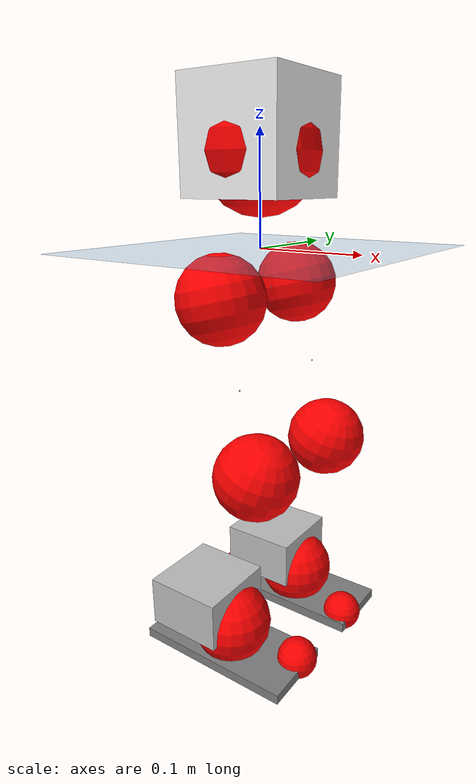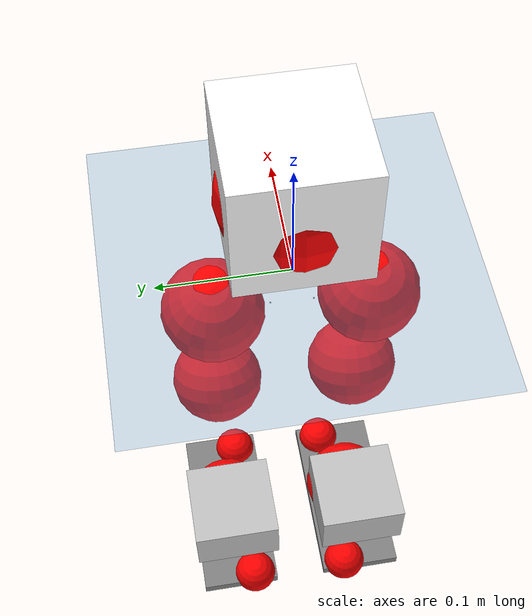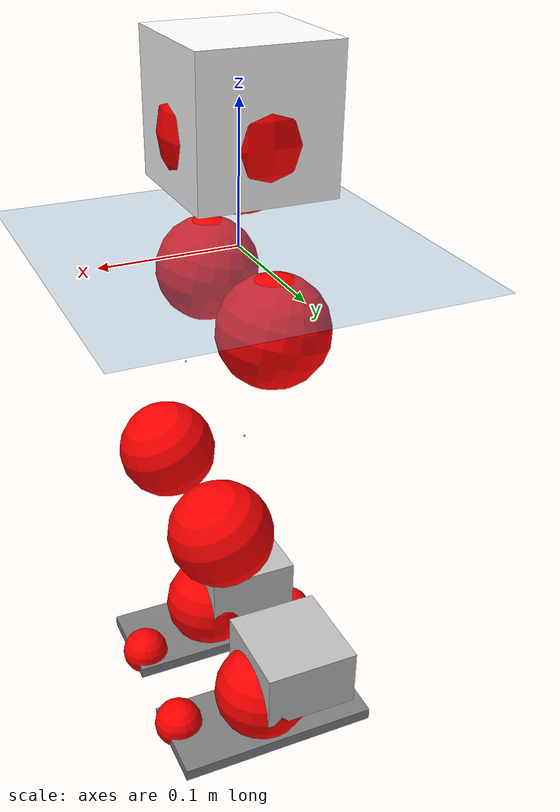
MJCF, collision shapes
<mujoco model="pi_12dof_release_v1">
  <compiler angle="radian" assetdir="assets" balanceinertia="true" inertiafromgeom="false"/>

  <option timestep="0.005" density="1.2" viscosity="2e-05"/>

  <size nkey="1"/>

  <visual>
    <quality shadowsize="8192"/>
    <map shadowclip="0.5"/>
  </visual>

  <default>
    <default class="/">
      <joint armature="0.01" damping="0.01" frictionloss="0.01"/>
      <geom contype="0" conaffinity="0" group="1" solref="-1000 -80"/>
      <site size="0.01 0.005 0.005" group="5"/>
      <general forcelimited="true" biastype="affine" gainprm="20" biasprm="0 -20 -0.5"/>
      <default class="foot">
        <geom size="0.0845 0.036 0.005" type="box" condim="6" group="4" priority="1" friction="0.9 0.2 0.2" solimp="0.015 1 0.005"/>
      </default>
      <default class="reward_collision_sphere">
        <geom group="5" rgba="1 0 0 1"/>
      </default>
    </default>
  </default>

  <asset>
    <texture type="skybox" colorspace="auto" name="//unnamed_texture_0" builtin="gradient" rgb1="0.95 0.95 0.95" rgb2="0.95 0.95 0.95" width="100" height="600"/>
    <texture type="2d" colorspace="auto" name="texplane" builtin="checker" rgb1="0.345 0.575 0.748" rgb2="0.345 0.575 0.748" markrgb="1 1 1" width="512" height="512"/>
    <material name="MatPlane" class="/" texture="texplane" texuniform="true" texrepeat="2 2" specular="0.9"/>
    <mesh name="baselink_1" class="/" file="baselink_1.STL"/>
    <mesh name="r_hip_pitch_link" class="/" file="r_hip_pitch_link.STL"/>
    <mesh name="r_hip_roll_link" class="/" file="r_hip_roll_link.STL"/>
    <mesh name="r_thigh_link" class="/" file="r_thigh_link.STL"/>
    <mesh name="r_calf_link" class="/" file="r_calf_link.STL"/>
    <mesh name="r_ankle_pitch_link" class="/" file="r_ankle_pitch_link.STL"/>
    <mesh name="r_ankle_roll_link" class="/" file="r_ankle_roll_link.STL"/>
    <mesh name="l_hip_pitch_link" class="/" file="l_hip_pitch_link.STL"/>
    <mesh name="l_hip_roll_link" class="/" file="l_hip_roll_link.STL"/>
    <mesh name="l_thigh_link" class="/" file="l_thigh_link.STL"/>
    <mesh name="l_calf_link" class="/" file="l_calf_link.STL"/>
    <mesh name="l_ankle_pitch_link" class="/" file="l_ankle_pitch_link.STL"/>
    <mesh name="l_ankle_roll_link" class="/" file="l_ankle_roll_link.STL"/>
  </asset>

  <worldbody>
    <geom name="floor" class="/" size="100 100 0.125" type="plane" group="0" material="MatPlane"/>
    <light name="toplight_shadow" class="/" pos="0 0 5" dir="0.0990148 0.0990148 -0.990148" type="directional" ambient="0.04 0.04 0.04" diffuse="0.55 0.55 0.55" specular="0.12 0.12 0.12"/>
    <light name="toplight_fill" class="/" pos="0 0 5" dir="0.0990148 0.0990148 -0.990148" type="directional" castshadow="false" ambient="0.04 0.04 0.04" diffuse="0.3 0.3 0.3" specular="0.08 0.08 0.08"/>
    <body name="trunk" pos="2.12199e-05 0.000634626 0.000313169" quat="1 0.000114461 -9.49832e-05 0.000269519">
      <inertial pos="0.00332775 -0.00198547 0.045498" quat="0.695507 0.00583408 0.00678891 0.718463" mass="1.96028" diaginertia="0.0116677 0.00202302 0.00774158"/>
      <joint name="//unnamed_joint_0" type="free"/>
      <geom name="//unnamed_geom_1" class="/" type="mesh" density="0" rgba="1 1 1 1" mesh="baselink_1"/>
      <geom name="//unnamed_geom_2" class="/" size="0.0486933 0.0486933 0.0486933" pos="0 0 0.0908245" type="box" rgba="1 1 1 1"/>
      <geom name="//unnamed_geom_3" class="reward_collision_sphere" size="0.0535626" pos="0 0 0.0794715"/>
      <site name="imu" class="/" pos="-0.0012908 -0.00102048 -0.00104613" size="0.00973865"/>
      <camera name="track" class="/" pos="0 -1.4875 0" quat="0.707107 0.707107 0 0" mode="trackcom"/>
      <camera name="ego_camera" class="/" pos="0.0781904 0 0.204355" quat="-0.5 -0.5 0.5 0.5"/>
      <body name="r_hip_pitch_link" pos="-0.000135937 -0.0165834 -0.0372868" quat="0.992186 1.37938e-06 -0.124764 6.6284e-05">
        <inertial pos="0.000915964 -0.0423145 0.000126403" quat="-0.0165943 0.711203 -0.0242298 0.702373" mass="0.342239" diaginertia="0.000134501 2.26792e-05 0.00015796"/>
        <joint name="r_hip_pitch_joint" class="/" pos="0 0 0" axis="0.00705337 -0.999971 -0.00282836" range="-1.76308 1.23156" armature="0.00977469" damping="0.0179892" frictionloss="0.0102222"/>
        <geom name="//unnamed_geom_4" class="/" type="mesh" density="0" rgba="0.75294 0.75294 0.75294 1" mesh="r_hip_pitch_link"/>
        <geom name="//unnamed_geom_5" class="/" size="0.000486933 0.000486933 0.000486933" type="box" rgba="0.75294 0.75294 0.75294 1"/>
        <body name="r_hip_roll_link" pos="0.00032 -0.0422235 -0.000658237" quat="1 0.000418668 0.000348523 0.000352418">
          <inertial pos="-0.000676438 0.00115528 -0.0692147" quat="0.703902 -0.0769765 -0.0817433 0.701366" mass="0.355387" diaginertia="0.000409512 6.44621e-05 0.000243103"/>
          <joint name="r_hip_roll_joint" class="/" pos="0 0 0" axis="-0.999991 -0.00163533 -0.00382942" range="-0.123382 0.498436" armature="0.00968841" damping="0.00876875" frictionloss="0.00962458"/>
          <geom name="//unnamed_geom_6" class="/" type="mesh" density="0" rgba="0.75294 0.75294 0.75294 1" mesh="r_hip_roll_link"/>
          <geom name="//unnamed_geom_7" class="/" size="0.000486933 0.000486933 0.000486933" type="box" rgba="0.75294 0.75294 0.75294 1"/>
          <geom name="//unnamed_geom_8" class="reward_collision_sphere" size="0.0389546"/>
          <body name="r_thigh_link" pos="-0.000289741 -0.00120436 -0.0780877" quat="1 -0.000198913 -0.00022606 -1.52931e-05">
            <inertial pos="-0.000124366 0.00112784 -0.0540796" quat="0.737968 0.674829 0.00227442 0.00162659" mass="0.10443" diaginertia="0.000155532 2.20018e-05 0.000109933"/>
            <joint name="r_thigh_joint" class="/" pos="0 0 0" axis="-2.71296e-05 0.000309012 -1" range="-0.326733 0.567366" armature="0.00984273" damping="0" frictionloss="0.0103116"/>
            <geom name="//unnamed_geom_9" class="/" type="mesh" density="0" rgba="0.75294 0.75294 0.75294 1" mesh="r_thigh_link"/>
            <geom name="//unnamed_geom_10" class="/" size="0.000486933 0.000486933 0.000486933" type="box" rgba="0.75294 0.75294 0.75294 1"/>
            <body name="r_calf_link" pos="-0.00186574 -0.000917047 -0.0788435" quat="0.947691 -8.33698e-05 0.31919 1.03327e-05">
              <inertial pos="-0.000831492 -0.00165818 -0.0785756" quat="0.999959 -0.00314722 0.000197662 0.0084879" mass="0.756878" diaginertia="0.00435466 0.000796847 0.000326439"/>
              <joint name="r_calf_joint" class="/" pos="0 0 0" axis="-0.00966542 -0.999951 -0.00231702" stiffness="0.000191023" range="-1.63104 0.637448" armature="0.00981992" damping="0.0140106" frictionloss="0.0101434"/>
              <geom name="//unnamed_geom_11" class="/" type="mesh" density="0" rgba="0.75294 0.75294 0.75294 1" mesh="r_calf_link"/>
              <geom name="//unnamed_geom_12" class="/" size="0.000486933 0.000486933 0.000486933" type="box" rgba="0.75294 0.75294 0.75294 1"/>
              <geom name="//unnamed_geom_13" class="reward_collision_sphere" size="0.0389546"/>
              <body name="r_ankle_pitch_link" pos="0.00129507 0.000655782 -0.160119" quat="0.980056 -2.13258e-06 -0.198723 2.2807e-05">
                <inertial pos="0.00412157 0.00348526 0.000771631" quat="-0.000503493 0.706959 -0.00321714 0.707247" mass="0.162414" diaginertia="0.000382608 5.05351e-05 0.000226237"/>
                <joint name="r_ankle_pitch_joint" class="/" pos="0 0 0" axis="-2.5222e-05 -1 -2.01844e-05" range="-1.28636 0.482247" armature="0.00987528" damping="0.0108736" frictionloss="0.0100504"/>
                <geom name="//unnamed_geom_14" class="/" type="mesh" density="0" rgba="0.75294 0.75294 0.75294 1" mesh="r_ankle_pitch_link"/>
                <geom name="//unnamed_geom_15" class="/" size="0.0379807 0.0389546 0.0243466" type="box" rgba="0.75294 0.75294 0.75294 1"/>
                <body name="r_ankle_roll_link" pos="0.0799461 0.00304201 0.000994949" quat="1 6.15225e-05 -8.80953e-05 -5.77046e-06">
                  <inertial pos="-0.0241023 -0.000627589 -0.0163824" quat="0.558723 0.433821 0.431727 0.559679" mass="0.487676" diaginertia="0.00143194 0.000237544 0.000549654"/>
                  <joint name="r_ankle_roll_joint" class="/" pos="0 0 0" axis="-0.99997 -0.00116903 0.00769309" range="-0.120674 0.152256" armature="0.00968818" damping="0.00364246" frictionloss="0.00957027"/>
                  <geom name="//unnamed_geom_16" class="/" type="mesh" density="0" rgba="0.75294 0.75294 0.75294 1" mesh="r_ankle_roll_link"/>
                  <geom name="//unnamed_geom_17" class="/" type="mesh" rgba="0.75294 0.75294 0.75294 1" mesh="r_ankle_roll_link"/>
                  <geom name="right_foot" class="foot" size="0.0796819 0.0366472 0.00475149" pos="-0.0531695 0 -0.0499535"/>
                  <geom name="//unnamed_geom_19" class="reward_collision_sphere" size="0.0389546" pos="-0.052127 0 -0.0227061"/>
                  <geom name="//unnamed_geom_20" class="reward_collision_sphere" size="0.0194773" pos="0.0156381 0.014875 -0.0454123"/>
                  <geom name="//unnamed_geom_21" class="reward_collision_sphere" size="0.0194773" pos="-0.125105 0.014875 -0.0454123"/>
                  <site name="right_foot" class="foot" pos="-0.0531695 0 -0.0499535" size="0.00973865"/>
                </body>
              </body>
            </body>
          </body>
        </body>
      </body>
      <body name="l_hip_pitch_link" pos="0.000667732 0.0162546 -0.0366388" quat="0.992203 0.000186487 -0.124632 -2.4952e-05">
        <inertial pos="0.00137591 0.0399108 -0.00104364" quat="-0.0395352 0.705591 0.0301367 0.706873" mass="0.356176" diaginertia="0.000158667 2.44303e-05 0.000189525"/>
        <joint name="l_hip_pitch_joint" class="/" pos="0 0 0" axis="0.00162547 0.999999 0.00041941" range="-1.23681 1.76219" armature="0.00981076" damping="0.0125234" frictionloss="0.0096449"/>
        <geom name="//unnamed_geom_22" class="/" type="mesh" density="0" rgba="0.75294 0.75294 0.75294 1" mesh="l_hip_pitch_link"/>
        <geom name="//unnamed_geom_23" class="/" size="0.000486933 0.000486933 0.000486933" type="box" rgba="0.75294 0.75294 0.75294 1"/>
        <body name="l_hip_roll_link" pos="0.00041546 0.0428793 -0.000781493" quat="1 5.71462e-05 0.000265198 0.000457833">
          <inertial pos="-0.000941218 0.00157987 -0.0696062" quat="0.699678 -0.075709 -0.0775024 0.706196" mass="0.352509" diaginertia="0.000414592 6.23615e-05 0.000243876"/>
          <joint name="l_hip_roll_joint" class="/" pos="0 0 0" axis="-0.999991 -0.000865361 0.00411088" range="-0.496518 0.110237" armature="0.010413" damping="0.00407629" frictionloss="0.0101909"/>
          <geom name="//unnamed_geom_24" class="/" type="mesh" density="0" rgba="0.75294 0.75294 0.75294 1" mesh="l_hip_roll_link"/>
          <geom name="//unnamed_geom_25" class="/" size="0.000486933 0.000486933 0.000486933" type="box" rgba="0.75294 0.75294 0.75294 1"/>
          <geom name="//unnamed_geom_26" class="reward_collision_sphere" size="0.0389546"/>
          <body name="l_thigh_link" pos="0.00070339 -0.000792246 -0.0790076" quat="1 -0.000192193 -0.000395645 -7.74038e-05">
            <inertial pos="0.000210233 -0.00136265 -0.0548162" quat="0.675431 0.737423 -0.000507652 -0.000253305" mass="0.105145" diaginertia="0.000155735 2.17744e-05 0.000110079"/>
            <joint name="l_thigh_joint" class="/" pos="0 0 0" axis="0.000516648 -0.000160567 -1" range="-0.607539 0.30008" armature="0.0102176" damping="0" frictionloss="0.00953088"/>
            <geom name="//unnamed_geom_27" class="/" type="mesh" density="0" rgba="0.75294 0.75294 0.75294 1" mesh="l_thigh_link"/>
            <geom name="//unnamed_geom_28" class="/" size="0.000486933 0.000486933 0.000486933" type="box" rgba="0.75294 0.75294 0.75294 1"/>
            <body name="l_calf_link" pos="-0.00149804 0.00046887 -0.0801768" quat="0.947893 0.000403431 0.318588 -3.20113e-05">
              <inertial pos="0.000626215 0.0029373 -0.0792778" quat="0.999987 0.00312903 -0.000465698 0.00406698" mass="0.759959" diaginertia="0.00438363 0.000802958 0.000340256"/>
              <joint name="l_calf_joint" class="/" pos="0 0 0" axis="0.00261047 0.999995 0.00159738" range="-0.642501 1.66105" armature="0.0102558" damping="0.00816736" frictionloss="0.00967509"/>
              <geom name="//unnamed_geom_29" class="/" type="mesh" density="0" rgba="0.75294 0.75294 0.75294 1" mesh="l_calf_link"/>
              <geom name="//unnamed_geom_30" class="/" size="0.000486933 0.000486933 0.000486933" type="box" rgba="0.75294 0.75294 0.75294 1"/>
              <geom name="//unnamed_geom_31" class="reward_collision_sphere" size="0.0389546"/>
              <body name="l_ankle_pitch_link" pos="0.00102714 0.00104044 -0.158078" quat="0.980121 0.000250291 -0.198399 4.59151e-05">
                <inertial pos="0.00529203 -0.000486576 -0.000690152" quat="-0.0044067 0.708017 0.00275928 0.706177" mass="0.162466" diaginertia="0.000378431 5.07469e-05 0.000228579"/>
                <joint name="l_ankle_pitch_joint" class="/" pos="0 0 0" axis="-9.69407e-05 1 0.000742894" stiffness="0.00283993" range="-0.51841 1.30631" armature="0.00942767" damping="0.00869904" frictionloss="0.0101268"/>
                <geom name="//unnamed_geom_32" class="/" type="mesh" density="0" rgba="0.75294 0.75294 0.75294 1" mesh="l_ankle_pitch_link"/>
                <geom name="//unnamed_geom_33" class="/" size="0.0379807 0.0389546 0.0243466" type="box" rgba="0.75294 0.75294 0.75294 1"/>
                <body name="l_ankle_roll_link" pos="0.0783249 0.000865029 -0.000749714" quat="1 5.49097e-06 5.17126e-05 -3.07902e-05">
                  <inertial pos="-0.0244367 -0.000204635 -0.0158986" quat="0.55991 0.430735 0.434092 0.559046" mass="0.474729" diaginertia="0.00138955 0.000231652 0.000532234"/>
                  <joint name="l_ankle_roll_joint" class="/" pos="0 0 0" axis="-0.999999 0.00111142 0.000245137" range="-0.127604 0.15625" armature="0.00947641" damping="0.000359155" frictionloss="0.0100486"/>
                  <geom name="//unnamed_geom_34" class="/" type="mesh" density="0" rgba="0.75294 0.75294 0.75294 1" mesh="l_ankle_roll_link"/>
                  <geom name="//unnamed_geom_35" class="/" type="mesh" rgba="0.75294 0.75294 0.75294 1" mesh="l_ankle_roll_link"/>
                  <geom name="left_foot" class="foot" size="0.0810846 0.0355802 0.00497456" pos="-0.0531695 0 -0.0499535"/>
                  <geom name="//unnamed_geom_37" class="reward_collision_sphere" size="0.0389546" pos="-0.052127 0 -0.0227061"/>
                  <geom name="//unnamed_geom_38" class="reward_collision_sphere" size="0.0194773" pos="0.0156381 -0.014875 -0.0454123"/>
                  <geom name="//unnamed_geom_39" class="reward_collision_sphere" size="0.0194773" pos="-0.125105 -0.014875 -0.0454123"/>
                  <site name="left_foot" class="foot" pos="-0.0531695 0 -0.0499535" size="0.00973865"/>
                </body>
              </body>
            </body>
          </body>
        </body>
      </body>
    </body>
  </worldbody>

  <contact>
    <pair class="/" geom1="floor" geom2="right_foot" name="//unnamed_contact_1"/>
    <pair class="/" geom1="floor" geom2="left_foot" name="//unnamed_contact_0"/>
  </contact>

  <actuator>
    <general name="r_hip_pitch_joint" class="/" joint="r_hip_pitch_joint" forcerange="-21.0918 21.0918" gainprm="19.9871" biasprm="0 -19.9871 -0.468468"/>
    <general name="r_hip_roll_joint" class="/" joint="r_hip_roll_joint" forcerange="-21.5993 21.5993" gainprm="19.9871" biasprm="0 -19.9871 -0.468468"/>
    <general name="r_thigh_joint" class="/" joint="r_thigh_joint" forcerange="-20.3873 20.3873" gainprm="19.9871" biasprm="0 -19.9871 -0.468468"/>
    <general name="r_calf_joint" class="/" joint="r_calf_joint" forcerange="-20.3575 20.3575" gainprm="19.9871" biasprm="0 -19.9871 -0.468468"/>
    <general name="r_ankle_pitch_joint" class="/" joint="r_ankle_pitch_joint" forcerange="-20.432 20.432" gainprm="19.9871" biasprm="0 -19.9871 -0.468468"/>
    <general name="r_ankle_roll_joint" class="/" joint="r_ankle_roll_joint" forcerange="-20.2794 20.2794" gainprm="19.9871" biasprm="0 -19.9871 -0.468468"/>
    <general name="l_hip_pitch_joint" class="/" joint="l_hip_pitch_joint" forcerange="-19.7171 19.7171" gainprm="19.9871" biasprm="0 -19.9871 -0.468468"/>
    <general name="l_hip_roll_joint" class="/" joint="l_hip_roll_joint" forcerange="-20.3901 20.3901" gainprm="19.9871" biasprm="0 -19.9871 -0.468468"/>
    <general name="l_thigh_joint" class="/" joint="l_thigh_joint" forcerange="-20.2209 20.2209" gainprm="19.9871" biasprm="0 -19.9871 -0.468468"/>
    <general name="l_calf_joint" class="/" joint="l_calf_joint" forcerange="-21.1816 21.1816" gainprm="19.9871" biasprm="0 -19.9871 -0.468468"/>
    <general name="l_ankle_pitch_joint" class="/" joint="l_ankle_pitch_joint" forcerange="-20.6934 20.6934" gainprm="19.9871" biasprm="0 -19.9871 -0.468468"/>
    <general name="l_ankle_roll_joint" class="/" joint="l_ankle_roll_joint" forcerange="-20.687 20.687" gainprm="19.9871" biasprm="0 -19.9871 -0.468468"/>
  </actuator>

  <sensor>
    <gyro site="imu" name="imu_angular_velocity"/>
    <velocimeter site="imu" name="imu_linear_velocity"/>
    <framelinvel objtype="site" objname="left_foot" name="left_foot_global_linear_velocity"/>
    <framelinvel objtype="site" objname="right_foot" name="right_foot_global_linear_velocity"/>
  </sensor>

  <keyframe>
    <key name="home" qpos="0 0 0.291 1 0 0 0 0.4 0 0 -0.8 0.4 0 -0.4 0 0 0.8 -0.4 0"/>
  </keyframe>
</mujoco>
